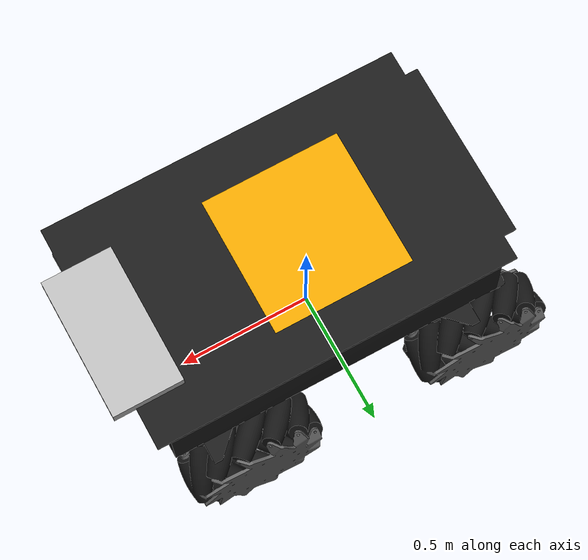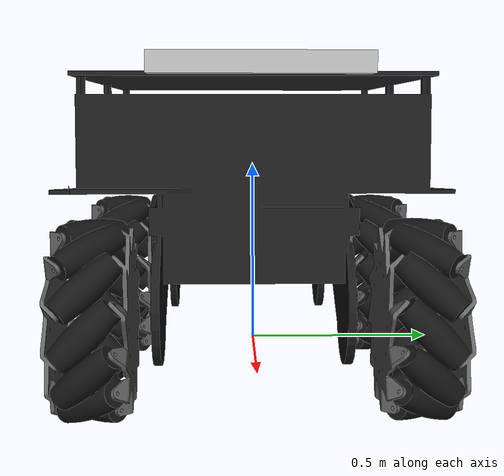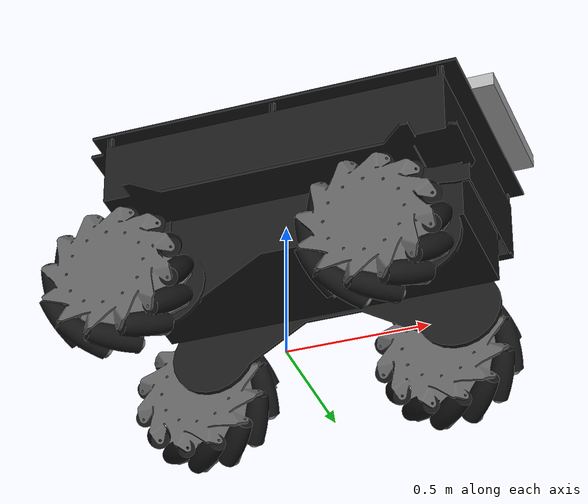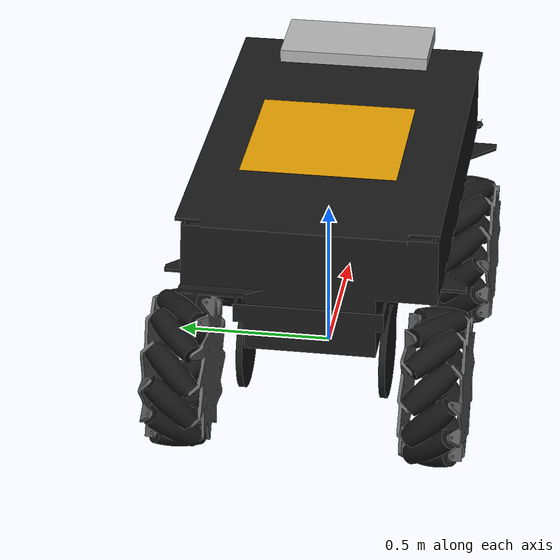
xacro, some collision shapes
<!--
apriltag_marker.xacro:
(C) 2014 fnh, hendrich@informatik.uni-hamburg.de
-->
<?xml version="1.0"?>

<robot name="bot" xmlns:xacro="http://www.ros.org/wiki/xacro">

	<!-- Import bot  wheels -->
	<xacro:include filename="$(find bot_description)/urdf/wheels/omni_wheel.urdf.xacro" />
	<xacro:include filename="$(find bot_description)/urdf/base/bot_base.urdf.xacro" />
	<xacro:include filename="$(find bot_description)/urdf/base/custom_base.gazebo.xacro" />
	<!-- Wheel parameters -->
	<xacro:property name="wheel_offset_x" value="0.4450" />    <!-- x,y,z in translation from base_link to the center of the wheel -->
	<xacro:property name="wheel_offset_y" value="0.4090" />
	<xacro:property name="wheel_offset_z" value="0.0" />

	<xacro:macro name="robot">
		<xacro:bot_base/>

		<xacro:omni_wheel prefix="bot_front_right" parent="base_link" reflect="false">
			<origin xyz="${wheel_offset_x} -${wheel_offset_y} ${wheel_offset_z}" rpy="0 0 0"/>
		</xacro:omni_wheel>

		<xacro:omni_wheel prefix="bot_front_left" parent="base_link" reflect="true">
			<origin xyz="${wheel_offset_x} ${wheel_offset_y} ${wheel_offset_z}" rpy="0 0 0"/>
		</xacro:omni_wheel>

		<xacro:omni_wheel prefix="bot_back_left" parent="base_link" reflect="true">
			<origin xyz="-${wheel_offset_x} ${wheel_offset_y} ${wheel_offset_z}" rpy="0 0 0"/>
		</xacro:omni_wheel>

		<xacro:omni_wheel prefix="bot_back_right" parent="base_link" reflect="false">
			<origin xyz="-${wheel_offset_x} -${wheel_offset_y} ${wheel_offset_z}" rpy="0 0 0"/>
		</xacro:omni_wheel>

		<xacro:omni_steering />
   </xacro:macro>
   <xacro:include filename="$(find bot_description)/urdf/tags/apriltag_marker.xacro" />

   <xacro:apriltag_marker namespace="" name="apriltag0" parent="base_link" family="36h11" ID="0" size="0.5">
    <origin xyz="0.0 0 0.625" rpy=" 0 0 0" />
   </xacro:apriltag_marker>
   <xacro:robot/>

   <link name="package_platform">
		<inertial>
		<mass value="0.1" />
		<origin xyz="0 0.1 0" rpy="0 0 1.5717"/>
		<inertia  ixx="0.1" ixy="0.0"  ixz="0.0"  iyy="0.1"  iyz="0.0"  izz="0.1" />
		</inertial>
		<collision>
       <origin xyz="0 0.15 0" rpy="0 0 0" />
			<geometry>
				<box size="0.25 0.5 0.05" />
			</geometry>
    	</collision>
		<visual>
		    <origin xyz="0.0 0.15 0" rpy="0 0 1.5717" />
			<geometry>
			<box size="0.25 0.5 0.05" />
			</geometry>
		</visual>
	</link>
	<joint name="package_platform_joint" type="revolute">
		  <origin xyz="0.85 0 0.625" rpy="0 0 1.5717" />
		  <parent link="base_link"/>
		  <child link="package_platform" />
		  <limit effort="50.0" lower="-1.57" upper="1.57" velocity="100"/>
	</joint>
	<transmission name="platform">
    <type>transmission_interface/SimpleTransmission</type>
    <joint name="package_platform_joint">
      <hardwareInterface>hardware_interface/PositionJointInterface</hardwareInterface>
    </joint>
    <actuator name="package_platform_motor">
      <hardwareInterface>hardware_interface/PositionJointInterface</hardwareInterface>
      <mechanicalReduction>1</mechanicalReduction>
    </actuator>
  </transmission>
  <gazebo>
  <plugin name="gazebo_ros_control" filename="libgazebo_ros_control.so">
    <robotNamespace>/</robotNamespace>
  </plugin>
</gazebo>
</robot>

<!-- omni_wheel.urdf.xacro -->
<robot name="wheel" xmlns:xacro="http://www.ros.org/wiki/xacro">

  <xacro:property name="PI" value="3.1415926535897931" />

  <!-- Wheels -->
  <xacro:property name="wheel_radius" value="0.127" />
  <xacro:property name="wheel_height" value="0.087" />
  <xacro:property name="wheel_mass" value="6.5" /> <!-- in kg-->

  <xacro:macro name="omni_wheel" params="prefix parent *origin reflect">

    <joint name="${prefix}_wheel_joint" type="continuous">
      <parent link="${parent}"/>
      <child link="${prefix}_wheel_link"/>
      <xacro:insert_block name="origin" />
      <axis xyz="0 1 0" rpy="0 0 0" />
      <limit effort="100" velocity="100"/>
      <joint_properties damping="0.0" friction="0.0"/>
    </joint>

    <link name="${prefix}_wheel_link">
      <visual>
        <origin xyz="0 0 0" rpy="0 0 0" />
        <xacro:if value="${reflect}">
          <geometry>
            <mesh filename="package://bot_description/meshes/wheel/omni_wheel_1_scaled.dae" />
          </geometry>
          </xacro:if>
          <xacro:unless value="${reflect}">
            <geometry>
              <mesh filename="package://bot_description/meshes/wheel/omni_wheel_2_scaled.dae" />
            </geometry>
		    </xacro:unless>
      </visual>

      <collision>
				<origin xyz="0 0 0" rpy="${PI/2} 0 0" />
        <geometry>
					<cylinder length="${wheel_height}" radius="${wheel_radius}" />
        </geometry>
      </collision>

      <inertial>
        <mass value="${wheel_mass}" />
        <origin xyz="0 0 0" />
        <inertia  ixx="${wheel_mass*(3*wheel_radius*wheel_radius+wheel_height*wheel_height)/12}" ixy = "0" ixz = "0"
              iyy="${wheel_mass*wheel_radius*wheel_radius/2}" iyz = "0"
              izz="${wheel_mass*(3*wheel_radius*wheel_radius+wheel_height*wheel_height)/12}" />
      </inertial>
    </link>

    <transmission name="${prefix}_wheel_joint_trans">
      <type>transmission_interface/SimpleTransmission</type>
      <joint name="${prefix}_wheel_joint" >
        <hardwareInterface>hardware_interface/VelocityJointInterface</hardwareInterface>
      </joint>
      <actuator name="${prefix}_wheel_joint_motor">
         <mechanicalReduction>1</mechanicalReduction>
      </actuator>
    </transmission>

    <gazebo reference="${prefix}_wheel_link">
		<mu1 value="0"/>
		<mu2 value="0"/>
		<fdir1 value="1 0 0"/>
        <turnGravityOff>false</turnGravityOff>
    </gazebo>

  </xacro:macro>
</robot>

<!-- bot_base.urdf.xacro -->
<robot name="bot" xmlns:xacro="http://www.ros.org/wiki/xacro">
  <xacro:macro name="bot_base">
	  <!-- Robot mechanical and motor parameters -->
	  <xacro:property name="PI" value="3.1415926535897931"/>
	  <xacro:property name="wheel_width" value="0.175" />

		<link name="base_footprint">
		  <visual>
			  <origin xyz="0 0 0" rpy="0 0 0" />
			  <geometry>
				 <box size="0.001 0.001 0.001" />
			  </geometry>
		  </visual>
		</link>

		<joint name="base_footprint_joint" type="fixed">
		  <origin xyz="0 0 ${wheel_radius}" rpy="0 0 0" /> <!-- ${wheel_radius} property must be defined inside wheel description -->
		  <parent link="base_footprint"/>
		  <child link="base_link" />
		</joint>

  <!-- BASE_LINK -->
  <link name="base_link">
    <inertial>
      <mass value="12.50" />
      <origin xyz="0 0 0" />
      <inertia  ixx="1.391" ixy="0.004"  ixz="0.0"  iyy="6.853"  iyz="0.0"  izz="6.125" />
    </inertial>

    <visual>
       <origin xyz="0 0.02 0" rpy="0 0 3.14" />

       <geometry>
	     <mesh filename="package://bot_description/meshes/base/custom_base_scaled.dae"/>
       </geometry>

       <material name="darkgrey">
         <color rgba="0.1 0.1 0.1 1"/>
       </material>

    </visual>

    <collision>
       <origin xyz="0 0.02 0" rpy="0 0 3.14" />
       <geometry>
         <mesh filename="package://bot_description/meshes/base/custom_base_scaled.dae"/>
       </geometry>
    </collision>

  </link>

  </xacro:macro>

</robot>

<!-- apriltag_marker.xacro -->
<robot xmlns:xacro="http://www.ros.org/wiki/xacro"
       name="apriltag_marker">

  <xacro:macro name="apriltag_marker" params="namespace name parent family ID size:=0 apriltag_size:=0 *origin" >

    <!-- Check in which way the size was specified -->
    <xacro:if value="${apriltag_size == 0}">
      <xacro:property name="mesh_size" value="${size}" />
    </xacro:if>
    <xacro:if value="${apriltag_size != 0}">
      <xacro:if value="${family == '36h11'}">
        <xacro:property name="mesh_size" value="${apriltag_size/8*10}" />
      </xacro:if>
      <xacro:if value="${family == '16h5'}">
        <xacro:property name="mesh_size" value="${apriltag_size/6*8}" />
      </xacro:if>
    </xacro:if>

    <link name="${namespace}${name}">
      <inertial>
        <mass value="0.001" />
        <origin xyz="0 0 0" rpy="0 0 0" />
        <inertia ixx="0.00001" ixy="0" ixz="0" iyy="0.00001" iyz="0" izz="0.00002" />
      </inertial>
      <collision>
        <origin xyz="0 0 0" rpy="0 0 0" />
        <geometry>
          <box size="${mesh_size} ${mesh_size} 0.001" />
        </geometry>
      </collision>
      <visual>
        <origin xyz="0 0 0" rpy="0 0 0" />
        <geometry>
          <!-- use Python str to convert family name and to generate leading zeros -->
          <mesh filename="package://bot_description/meshes/tags/tag36_11_00000.dae" scale="${10*mesh_size} ${10*mesh_size} 1"/>
        </geometry>
      </visual>
    </link>
    <!-- we use Gazebo material to put the texture onto the marker. Note mu1=mu2=0 for no friction. -->
    <gazebo reference="${namespace}${name}">
      <turnGravityOff>false</turnGravityOff>
      <selfCollide>false</selfCollide>
      <mu1>0</mu1>
      <mu2>0</mu2>
      <kp>1000000.0</kp>
      <kd>1.0</kd>
    </gazebo>
    <joint name="${namespace}${name}_joint" type="fixed">
      <xacro:insert_block name="origin" />
      <parent link="${namespace}${parent}" />
      <child link="${namespace}${name}" />
    </joint>
  </xacro:macro>

</robot>
